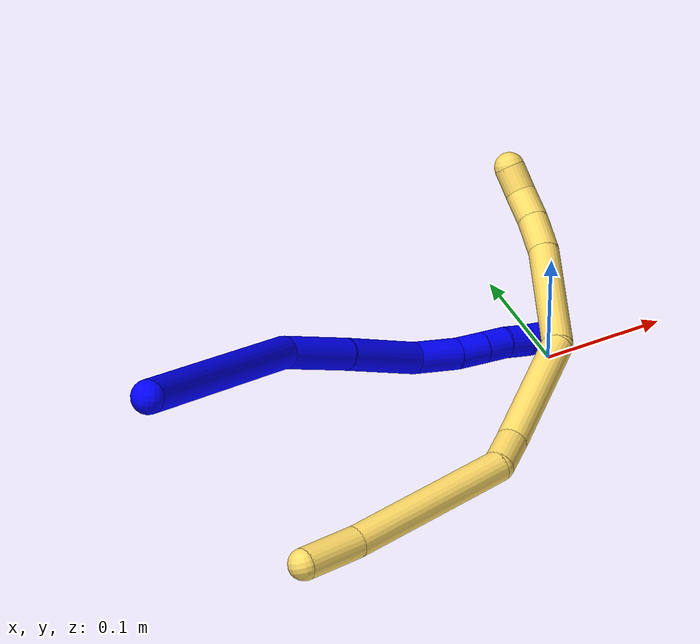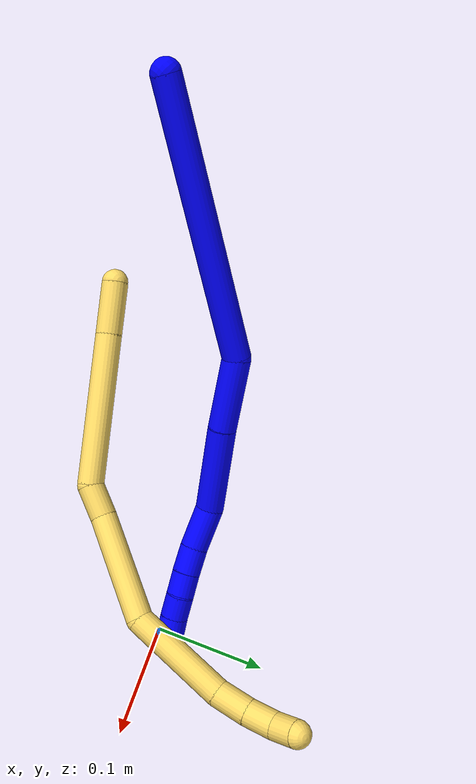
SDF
<sdf version="1.7">
 <world name="default">
  <model name="1">
   <static>0</static>
   <link name="1">
    <collision name="collision-cylinder-e_1_1_4">
     <pose>0.096894 0.03829 -0.051251 -2.49995 0.987248 -2.03507</pose>
     <geometry><cylinder><radius>0.0125</radius><length>0.232217</length></cylinder></geometry>
     <surface>
      <friction><ode><mu>1.16</mu><mu2>1.16</mu2><slip1>0</slip1><slip2>0</slip2></ode></friction>
      <contact><ode><kp>1e+06</kp><kd>1</kd><max_vel>0</max_vel><min_depth>0.001</min_depth></ode></contact>
     </surface>
    </collision>
    <visual name="visual-cylinder-e_1_1_4">
     <pose>0.096894 0.03829 -0.051251 -2.49995 0.987248 -2.03507</pose>
     <geometry><cylinder><radius>0.0125</radius><length>0.232217</length></cylinder></geometry>
     <material><ambient>0 0 1 1</ambient></material>
    </visual>
    <collision name="collision-cylinder-e_2_4_5">
     <pose>0.211817 0.086426 -0.127335 -2.7641 0.593663 -2.02508</pose>
     <geometry><cylinder><radius>0.0125</radius><length>0.064456</length></cylinder></geometry>
     <surface>
      <friction><ode><mu>1.16</mu><mu2>1.16</mu2><slip1>0</slip1><slip2>0</slip2></ode></friction>
      <contact><ode><kp>1e+06</kp><kd>1</kd><max_vel>0</max_vel><min_depth>0.001</min_depth></ode></contact>
     </surface>
    </collision>
    <visual name="visual-cylinder-e_2_4_5">
     <pose>0.211817 0.086426 -0.127335 -2.7641 0.593663 -2.02508</pose>
     <geometry><cylinder><radius>0.0125</radius><length>0.064456</length></cylinder></geometry>
     <material><ambient>0 0 1 1</ambient></material>
    </visual>
    <collision name="collision-cylinder-e_3_5_6">
     <pose>0.252804 0.109908 -0.180625 -2.69477 0.628975 -1.92217</pose>
     <geometry><cylinder><radius>0.0125</radius><length>0.078048</length></cylinder></geometry>
     <surface>
      <friction><ode><mu>1.16</mu><mu2>1.16</mu2><slip1>0</slip1><slip2>0</slip2></ode></friction>
      <contact><ode><kp>1e+06</kp><kd>1</kd><max_vel>0</max_vel><min_depth>0.001</min_depth></ode></contact>
     </surface>
    </collision>
    <visual name="visual-cylinder-e_3_5_6">
     <pose>0.252804 0.109908 -0.180625 -2.69477 0.628975 -1.92217</pose>
     <geometry><cylinder><radius>0.0125</radius><length>0.078048</length></cylinder></geometry>
     <material><ambient>0 0 1 1</ambient></material>
    </visual>
    <collision name="collision-cylinder-e_4_6_7">
     <pose>0.28385 0.125041 -0.2265 -3.05581 0.433335 -2.75647</pose>
     <geometry><cylinder><radius>0.0125</radius><length>0.038522</length></cylinder></geometry>
     <surface>
      <friction><ode><mu>1.16</mu><mu2>1.16</mu2><slip1>0</slip1><slip2>0</slip2></ode></friction>
      <contact><ode><kp>1e+06</kp><kd>1</kd><max_vel>0</max_vel><min_depth>0.001</min_depth></ode></contact>
     </surface>
    </collision>
    <visual name="visual-cylinder-e_4_6_7">
     <pose>0.28385 0.125041 -0.2265 -3.05581 0.433335 -2.75647</pose>
     <geometry><cylinder><radius>0.0125</radius><length>0.038522</length></cylinder></geometry>
     <material><ambient>0 0 1 1</ambient></material>
    </visual>
    <collision name="collision-cylinder-e_5_7_8">
     <pose>0.297772 0.126433 -0.254546 3.13168 0.501995 3.10292</pose>
     <geometry><cylinder><radius>0.0125</radius><length>0.024252</length></cylinder></geometry>
     <surface>
      <friction><ode><mu>1.16</mu><mu2>1.16</mu2><slip1>0</slip1><slip2>0</slip2></ode></friction>
      <contact><ode><kp>1e+06</kp><kd>1</kd><max_vel>0</max_vel><min_depth>0.001</min_depth></ode></contact>
     </surface>
    </collision>
    <visual name="visual-cylinder-e_5_7_8">
     <pose>0.297772 0.126433 -0.254546 3.13168 0.501995 3.10292</pose>
     <geometry><cylinder><radius>0.0125</radius><length>0.024252</length></cylinder></geometry>
     <material><ambient>0 0 1 1</ambient></material>
    </visual>
    <collision name="collision-cylinder-e_6_8_9">
     <pose>0.309044 0.126449 -0.274218 -3.12821 0.541305 -3.09336</pose>
     <geometry><cylinder><radius>0.0125</radius><length>0.021105</length></cylinder></geometry>
     <surface>
      <friction><ode><mu>1.16</mu><mu2>1.16</mu2><slip1>0</slip1><slip2>0</slip2></ode></friction>
      <contact><ode><kp>1e+06</kp><kd>1</kd><max_vel>0</max_vel><min_depth>0.001</min_depth></ode></contact>
     </surface>
    </collision>
    <visual name="visual-cylinder-e_6_8_9">
     <pose>0.309044 0.126449 -0.274218 -3.12821 0.541305 -3.09336</pose>
     <geometry><cylinder><radius>0.0125</radius><length>0.021105</length></cylinder></geometry>
     <material><ambient>0 0 1 1</ambient></material>
    </visual>
    <collision name="collision-cylinder-e_7_9_10">
     <pose>0.319929 0.12815 -0.292184 -2.96634 0.541311 -2.52832</pose>
     <geometry><cylinder><radius>0.0125</radius><length>0.021145</length></cylinder></geometry>
     <surface>
      <friction><ode><mu>1.16</mu><mu2>1.16</mu2><slip1>0</slip1><slip2>0</slip2></ode></friction>
      <contact><ode><kp>1e+06</kp><kd>1</kd><max_vel>0</max_vel><min_depth>0.001</min_depth></ode></contact>
     </surface>
    </collision>
    <visual name="visual-cylinder-e_7_9_10">
     <pose>0.319929 0.12815 -0.292184 -2.96634 0.541311 -2.52832</pose>
     <geometry><cylinder><radius>0.0125</radius><length>0.021145</length></cylinder></geometry>
     <material><ambient>0 0 1 1</ambient></material>
    </visual>
    <collision name="collision-cylinder-e_8_10_2">
     <pose>0.330995 0.130854 -0.309456 -3.00775 0.588131 -2.70599</pose>
     <geometry><cylinder><radius>0.0125</radius><length>0.020255</length></cylinder></geometry>
     <surface>
      <friction><ode><mu>1.16</mu><mu2>1.16</mu2><slip1>0</slip1><slip2>0</slip2></ode></friction>
      <contact><ode><kp>1e+06</kp><kd>1</kd><max_vel>0</max_vel><min_depth>0.001</min_depth></ode></contact>
     </surface>
    </collision>
    <visual name="visual-cylinder-e_8_10_2">
     <pose>0.330995 0.130854 -0.309456 -3.00775 0.588131 -2.70599</pose>
     <geometry><cylinder><radius>0.0125</radius><length>0.020255</length></cylinder></geometry>
     <material><ambient>0 0 1 1</ambient></material>
    </visual>
    <collision name="collision-sphere-2">
     <pose>0.336614 0.131978 -0.317806 0 -0 0</pose>
     <geometry><sphere><radius>0.0125</radius></sphere></geometry>
     <surface>
      <friction><ode><mu>1.16</mu><mu2>1.16</mu2><slip1>0</slip1><slip2>0</slip2></ode></friction>
      <contact><ode><kp>1e+06</kp><kd>1</kd><max_vel>0</max_vel><min_depth>0.001</min_depth></ode></contact>
     </surface>
    </collision>
    <visual name="visual-sphere-2">
     <pose>0.336614 0.131978 -0.317806 0 -0 0</pose>
     <geometry><sphere><radius>0.0125</radius></sphere></geometry>
     <material><ambient>0 0 1 1</ambient></material>
    </visual>
    <collision name="collision-sphere-10">
     <pose>0.325376 0.129729 -0.301106 0 -0 0</pose>
     <geometry><sphere><radius>0.0125</radius></sphere></geometry>
     <surface>
      <friction><ode><mu>1.16</mu><mu2>1.16</mu2><slip1>0</slip1><slip2>0</slip2></ode></friction>
      <contact><ode><kp>1e+06</kp><kd>1</kd><max_vel>0</max_vel><min_depth>0.001</min_depth></ode></contact>
     </surface>
    </collision>
    <visual name="visual-sphere-10">
     <pose>0.325376 0.129729 -0.301106 0 -0 0</pose>
     <geometry><sphere><radius>0.0125</radius></sphere></geometry>
     <material><ambient>0 0 1 1</ambient></material>
    </visual>
    <collision name="collision-sphere-9">
     <pose>0.314481 0.12657 -0.283262 0 -0 0</pose>
     <geometry><sphere><radius>0.0125</radius></sphere></geometry>
     <surface>
      <friction><ode><mu>1.16</mu><mu2>1.16</mu2><slip1>0</slip1><slip2>0</slip2></ode></friction>
      <contact><ode><kp>1e+06</kp><kd>1</kd><max_vel>0</max_vel><min_depth>0.001</min_depth></ode></contact>
     </surface>
    </collision>
    <visual name="visual-sphere-9">
     <pose>0.314481 0.12657 -0.283262 0 -0 0</pose>
     <geometry><sphere><radius>0.0125</radius></sphere></geometry>
     <material><ambient>0 0 1 1</ambient></material>
    </visual>
    <collision name="collision-sphere-4">
     <pose>0.193788 0.076579 -0.102502 0 -0 0</pose>
     <geometry><sphere><radius>0.0125</radius></sphere></geometry>
     <surface>
      <friction><ode><mu>1.16</mu><mu2>1.16</mu2><slip1>0</slip1><slip2>0</slip2></ode></friction>
      <contact><ode><kp>1e+06</kp><kd>1</kd><max_vel>0</max_vel><min_depth>0.001</min_depth></ode></contact>
     </surface>
    </collision>
    <visual name="visual-sphere-4">
     <pose>0.193788 0.076579 -0.102502 0 -0 0</pose>
     <geometry><sphere><radius>0.0125</radius></sphere></geometry>
     <material><ambient>0 0 1 1</ambient></material>
    </visual>
    <collision name="collision-sphere-1">
     <geometry><sphere><radius>0.0125</radius></sphere></geometry>
     <surface>
      <friction><ode><mu>1.16</mu><mu2>1.16</mu2><slip1>0</slip1><slip2>0</slip2></ode></friction>
      <contact><ode><kp>1e+06</kp><kd>1</kd><max_vel>0</max_vel><min_depth>0.001</min_depth></ode></contact>
     </surface>
    </collision>
    <visual name="visual-sphere-1">
     <geometry><sphere><radius>0.0125</radius></sphere></geometry>
     <material><ambient>0 0 1 1</ambient></material>
    </visual>
    <collision name="collision-sphere-8">
     <pose>0.303607 0.126328 -0.265175 0 -0 0</pose>
     <geometry><sphere><radius>0.0125</radius></sphere></geometry>
     <surface>
      <friction><ode><mu>1.16</mu><mu2>1.16</mu2><slip1>0</slip1><slip2>0</slip2></ode></friction>
      <contact><ode><kp>1e+06</kp><kd>1</kd><max_vel>0</max_vel><min_depth>0.001</min_depth></ode></contact>
     </surface>
    </collision>
    <visual name="visual-sphere-8">
     <pose>0.303607 0.126328 -0.265175 0 -0 0</pose>
     <geometry><sphere><radius>0.0125</radius></sphere></geometry>
     <material><ambient>0 0 1 1</ambient></material>
    </visual>
    <collision name="collision-sphere-5">
     <pose>0.229845 0.096272 -0.152168 0 -0 0</pose>
     <geometry><sphere><radius>0.0125</radius></sphere></geometry>
     <surface>
      <friction><ode><mu>1.16</mu><mu2>1.16</mu2><slip1>0</slip1><slip2>0</slip2></ode></friction>
      <contact><ode><kp>1e+06</kp><kd>1</kd><max_vel>0</max_vel><min_depth>0.001</min_depth></ode></contact>
     </surface>
    </collision>
    <visual name="visual-sphere-5">
     <pose>0.229845 0.096272 -0.152168 0 -0 0</pose>
     <geometry><sphere><radius>0.0125</radius></sphere></geometry>
     <material><ambient>0 0 1 1</ambient></material>
    </visual>
    <collision name="collision-sphere-6">
     <pose>0.275762 0.123543 -0.209083 0 -0 0</pose>
     <geometry><sphere><radius>0.0125</radius></sphere></geometry>
     <surface>
      <friction><ode><mu>1.16</mu><mu2>1.16</mu2><slip1>0</slip1><slip2>0</slip2></ode></friction>
      <contact><ode><kp>1e+06</kp><kd>1</kd><max_vel>0</max_vel><min_depth>0.001</min_depth></ode></contact>
     </surface>
    </collision>
    <visual name="visual-sphere-6">
     <pose>0.275762 0.123543 -0.209083 0 -0 0</pose>
     <geometry><sphere><radius>0.0125</radius></sphere></geometry>
     <material><ambient>0 0 1 1</ambient></material>
    </visual>
    <collision name="collision-sphere-7">
     <pose>0.291937 0.126539 -0.243916 0 -0 0</pose>
     <geometry><sphere><radius>0.0125</radius></sphere></geometry>
     <surface>
      <friction><ode><mu>1.16</mu><mu2>1.16</mu2><slip1>0</slip1><slip2>0</slip2></ode></friction>
      <contact><ode><kp>1e+06</kp><kd>1</kd><max_vel>0</max_vel><min_depth>0.001</min_depth></ode></contact>
     </surface>
    </collision>
    <visual name="visual-sphere-7">
     <pose>0.291937 0.126539 -0.243916 0 -0 0</pose>
     <geometry><sphere><radius>0.0125</radius></sphere></geometry>
     <material><ambient>0 0 1 1</ambient></material>
    </visual>
    <inertial>
     <pose>0.188063 0.077904 -0.134677 0 -0 0</pose>
     <mass>0.5</mass>
     <inertia>
      <ixx>-0.000838</ixx>
      <ixy>0</ixy>
      <ixz>0</ixz>
      <iyy>0.000336</iyy>
      <iyz>0</iyz>
      <izz>-0.001319</izz>
     </inertia>
    </inertial>
   </link>
   <pose>-0.396332 -0.143791 0.231372 -1.45106 0.158123 1.14605</pose>
  </model>
  <model name="5">
   <static>0</static>
   <link name="5">
    <collision name="collision-cylinder-e_1_1_4">
     <pose>0.021952 0.011981 -0.000549 -1.61656 1.07076 -1.11137</pose>
     <geometry><cylinder><radius>0.0125</radius><length>0.05003</length></cylinder></geometry>
     <surface>
      <friction><ode><mu>1.16</mu><mu2>1.16</mu2><slip1>0</slip1><slip2>0</slip2></ode></friction>
      <contact><ode><kp>1e+06</kp><kd>1</kd><max_vel>0</max_vel><min_depth>0.001</min_depth></ode></contact>
     </surface>
    </collision>
    <visual name="visual-cylinder-e_1_1_4">
     <pose>0.021952 0.011981 -0.000549 -1.61656 1.07076 -1.11137</pose>
     <geometry><cylinder><radius>0.0125</radius><length>0.05003</length></cylinder></geometry>
     <material><ambient>1 0.858824 0.4 1</ambient></material>
    </visual>
    <collision name="collision-cylinder-e_2_4_5">
     <pose>0.107752 0.055346 0.003817 -1.41548 1.10913 -0.974658</pose>
     <geometry><cylinder><radius>0.0125</radius><length>0.142627</length></cylinder></geometry>
     <surface>
      <friction><ode><mu>1.16</mu><mu2>1.16</mu2><slip1>0</slip1><slip2>0</slip2></ode></friction>
      <contact><ode><kp>1e+06</kp><kd>1</kd><max_vel>0</max_vel><min_depth>0.001</min_depth></ode></contact>
     </surface>
    </collision>
    <visual name="visual-cylinder-e_2_4_5">
     <pose>0.107752 0.055346 0.003817 -1.41548 1.10913 -0.974658</pose>
     <geometry><cylinder><radius>0.0125</radius><length>0.142627</length></cylinder></geometry>
     <material><ambient>1 0.858824 0.4 1</ambient></material>
    </visual>
    <collision name="collision-cylinder-e_3_5_6">
     <pose>0.180874 0.098688 0.013797 -1.1701 0.620101 -0.418244</pose>
     <geometry><cylinder><radius>0.0125</radius><length>0.031918</length></cylinder></geometry>
     <surface>
      <friction><ode><mu>1.16</mu><mu2>1.16</mu2><slip1>0</slip1><slip2>0</slip2></ode></friction>
      <contact><ode><kp>1e+06</kp><kd>1</kd><max_vel>0</max_vel><min_depth>0.001</min_depth></ode></contact>
     </surface>
    </collision>
    <visual name="visual-cylinder-e_3_5_6">
     <pose>0.180874 0.098688 0.013797 -1.1701 0.620101 -0.418244</pose>
     <geometry><cylinder><radius>0.0125</radius><length>0.031918</length></cylinder></geometry>
     <material><ambient>1 0.858824 0.4 1</ambient></material>
    </visual>
    <collision name="collision-cylinder-e_4_6_7">
     <pose>0.222269 0.140838 0.043832 -0.879775 0.68673 -0.333412</pose>
     <geometry><cylinder><radius>0.0125</radius><length>0.101325</length></cylinder></geometry>
     <surface>
      <friction><ode><mu>1.16</mu><mu2>1.16</mu2><slip1>0</slip1><slip2>0</slip2></ode></friction>
      <contact><ode><kp>1e+06</kp><kd>1</kd><max_vel>0</max_vel><min_depth>0.001</min_depth></ode></contact>
     </surface>
    </collision>
    <visual name="visual-cylinder-e_4_6_7">
     <pose>0.222269 0.140838 0.043832 -0.879775 0.68673 -0.333412</pose>
     <geometry><cylinder><radius>0.0125</radius><length>0.101325</length></cylinder></geometry>
     <material><ambient>1 0.858824 0.4 1</ambient></material>
    </visual>
    <collision name="collision-cylinder-e_5_7_8">
     <pose>0.264296 0.205229 0.099734 -0.835522 0.21162 -0.094218</pose>
     <geometry><cylinder><radius>0.0125</radius><length>0.094332</length></cylinder></geometry>
     <surface>
      <friction><ode><mu>1.16</mu><mu2>1.16</mu2><slip1>0</slip1><slip2>0</slip2></ode></friction>
      <contact><ode><kp>1e+06</kp><kd>1</kd><max_vel>0</max_vel><min_depth>0.001</min_depth></ode></contact>
     </surface>
    </collision>
    <visual name="visual-cylinder-e_5_7_8">
     <pose>0.264296 0.205229 0.099734 -0.835522 0.21162 -0.094218</pose>
     <geometry><cylinder><radius>0.0125</radius><length>0.094332</length></cylinder></geometry>
     <material><ambient>1 0.858824 0.4 1</ambient></material>
    </visual>
    <collision name="collision-cylinder-e_6_8_9">
     <pose>0.274765 0.249106 0.142635 -0.679933 0.036521 -0.012919</pose>
     <geometry><cylinder><radius>0.0125</radius><length>0.030802</length></cylinder></geometry>
     <surface>
      <friction><ode><mu>1.16</mu><mu2>1.16</mu2><slip1>0</slip1><slip2>0</slip2></ode></friction>
      <contact><ode><kp>1e+06</kp><kd>1</kd><max_vel>0</max_vel><min_depth>0.001</min_depth></ode></contact>
     </surface>
    </collision>
    <visual name="visual-cylinder-e_6_8_9">
     <pose>0.274765 0.249106 0.142635 -0.679933 0.036521 -0.012919</pose>
     <geometry><cylinder><radius>0.0125</radius><length>0.030802</length></cylinder></geometry>
     <material><ambient>1 0.858824 0.4 1</ambient></material>
    </visual>
    <collision name="collision-cylinder-e_7_9_10">
     <pose>0.274558 0.266532 0.165213 -0.63086 -0.058513 0.019099</pose>
     <geometry><cylinder><radius>0.0125</radius><length>0.026323</length></cylinder></geometry>
     <surface>
      <friction><ode><mu>1.16</mu><mu2>1.16</mu2><slip1>0</slip1><slip2>0</slip2></ode></friction>
      <contact><ode><kp>1e+06</kp><kd>1</kd><max_vel>0</max_vel><min_depth>0.001</min_depth></ode></contact>
     </surface>
    </collision>
    <visual name="visual-cylinder-e_7_9_10">
     <pose>0.274558 0.266532 0.165213 -0.63086 -0.058513 0.019099</pose>
     <geometry><cylinder><radius>0.0125</radius><length>0.026323</length></cylinder></geometry>
     <material><ambient>1 0.858824 0.4 1</ambient></material>
    </visual>
    <collision name="collision-cylinder-e_8_10_2">
     <pose>0.272405 0.276863 0.186759 -0.231783 -0.122533 0.014282</pose>
     <geometry><cylinder><radius>0.0125</radius><length>0.022644</length></cylinder></geometry>
     <surface>
      <friction><ode><mu>1.16</mu><mu2>1.16</mu2><slip1>0</slip1><slip2>0</slip2></ode></friction>
      <contact><ode><kp>1e+06</kp><kd>1</kd><max_vel>0</max_vel><min_depth>0.001</min_depth></ode></contact>
     </surface>
    </collision>
    <visual name="visual-cylinder-e_8_10_2">
     <pose>0.272405 0.276863 0.186759 -0.231783 -0.122533 0.014282</pose>
     <geometry><cylinder><radius>0.0125</radius><length>0.022644</length></cylinder></geometry>
     <material><ambient>1 0.858824 0.4 1</ambient></material>
    </visual>
    <collision name="collision-sphere-2">
     <pose>0.271021 0.279445 0.197696 0 -0 0</pose>
     <geometry><sphere><radius>0.0125</radius></sphere></geometry>
     <surface>
      <friction><ode><mu>1.16</mu><mu2>1.16</mu2><slip1>0</slip1><slip2>0</slip2></ode></friction>
      <contact><ode><kp>1e+06</kp><kd>1</kd><max_vel>0</max_vel><min_depth>0.001</min_depth></ode></contact>
     </surface>
    </collision>
    <visual name="visual-sphere-2">
     <pose>0.271021 0.279445 0.197696 0 -0 0</pose>
     <geometry><sphere><radius>0.0125</radius></sphere></geometry>
     <material><ambient>1 0.858824 0.4 1</ambient></material>
    </visual>
    <collision name="collision-sphere-10">
     <pose>0.273788 0.274282 0.175823 0 -0 0</pose>
     <geometry><sphere><radius>0.0125</radius></sphere></geometry>
     <surface>
      <friction><ode><mu>1.16</mu><mu2>1.16</mu2><slip1>0</slip1><slip2>0</slip2></ode></friction>
      <contact><ode><kp>1e+06</kp><kd>1</kd><max_vel>0</max_vel><min_depth>0.001</min_depth></ode></contact>
     </surface>
    </collision>
    <visual name="visual-sphere-10">
     <pose>0.273788 0.274282 0.175823 0 -0 0</pose>
     <geometry><sphere><radius>0.0125</radius></sphere></geometry>
     <material><ambient>1 0.858824 0.4 1</ambient></material>
    </visual>
    <collision name="collision-sphere-9">
     <pose>0.275328 0.258783 0.154603 0 -0 0</pose>
     <geometry><sphere><radius>0.0125</radius></sphere></geometry>
     <surface>
      <friction><ode><mu>1.16</mu><mu2>1.16</mu2><slip1>0</slip1><slip2>0</slip2></ode></friction>
      <contact><ode><kp>1e+06</kp><kd>1</kd><max_vel>0</max_vel><min_depth>0.001</min_depth></ode></contact>
     </surface>
    </collision>
    <visual name="visual-sphere-9">
     <pose>0.275328 0.258783 0.154603 0 -0 0</pose>
     <geometry><sphere><radius>0.0125</radius></sphere></geometry>
     <material><ambient>1 0.858824 0.4 1</ambient></material>
    </visual>
    <collision name="collision-sphere-4">
     <pose>0.043905 0.023962 -0.001097 0 -0 0</pose>
     <geometry><sphere><radius>0.0125</radius></sphere></geometry>
     <surface>
      <friction><ode><mu>1.16</mu><mu2>1.16</mu2><slip1>0</slip1><slip2>0</slip2></ode></friction>
      <contact><ode><kp>1e+06</kp><kd>1</kd><max_vel>0</max_vel><min_depth>0.001</min_depth></ode></contact>
     </surface>
    </collision>
    <visual name="visual-sphere-4">
     <pose>0.043905 0.023962 -0.001097 0 -0 0</pose>
     <geometry><sphere><radius>0.0125</radius></sphere></geometry>
     <material><ambient>1 0.858824 0.4 1</ambient></material>
    </visual>
    <collision name="collision-sphere-1">
     <geometry><sphere><radius>0.0125</radius></sphere></geometry>
     <surface>
      <friction><ode><mu>1.16</mu><mu2>1.16</mu2><slip1>0</slip1><slip2>0</slip2></ode></friction>
      <contact><ode><kp>1e+06</kp><kd>1</kd><max_vel>0</max_vel><min_depth>0.001</min_depth></ode></contact>
     </surface>
    </collision>
    <visual name="visual-sphere-1">
     <geometry><sphere><radius>0.0125</radius></sphere></geometry>
     <material><ambient>1 0.858824 0.4 1</ambient></material>
    </visual>
    <collision name="collision-sphere-8">
     <pose>0.274203 0.239429 0.130667 0 -0 0</pose>
     <geometry><sphere><radius>0.0125</radius></sphere></geometry>
     <surface>
      <friction><ode><mu>1.16</mu><mu2>1.16</mu2><slip1>0</slip1><slip2>0</slip2></ode></friction>
      <contact><ode><kp>1e+06</kp><kd>1</kd><max_vel>0</max_vel><min_depth>0.001</min_depth></ode></contact>
     </surface>
    </collision>
    <visual name="visual-sphere-8">
     <pose>0.274203 0.239429 0.130667 0 -0 0</pose>
     <geometry><sphere><radius>0.0125</radius></sphere></geometry>
     <material><ambient>1 0.858824 0.4 1</ambient></material>
    </visual>
    <collision name="collision-sphere-5">
     <pose>0.1716 0.086729 0.008731 0 -0 0</pose>
     <geometry><sphere><radius>0.0125</radius></sphere></geometry>
     <surface>
      <friction><ode><mu>1.16</mu><mu2>1.16</mu2><slip1>0</slip1><slip2>0</slip2></ode></friction>
      <contact><ode><kp>1e+06</kp><kd>1</kd><max_vel>0</max_vel><min_depth>0.001</min_depth></ode></contact>
     </surface>
    </collision>
    <visual name="visual-sphere-5">
     <pose>0.1716 0.086729 0.008731 0 -0 0</pose>
     <geometry><sphere><radius>0.0125</radius></sphere></geometry>
     <material><ambient>1 0.858824 0.4 1</ambient></material>
    </visual>
    <collision name="collision-sphere-6">
     <pose>0.190148 0.110647 0.018863 0 -0 0</pose>
     <geometry><sphere><radius>0.0125</radius></sphere></geometry>
     <surface>
      <friction><ode><mu>1.16</mu><mu2>1.16</mu2><slip1>0</slip1><slip2>0</slip2></ode></friction>
      <contact><ode><kp>1e+06</kp><kd>1</kd><max_vel>0</max_vel><min_depth>0.001</min_depth></ode></contact>
     </surface>
    </collision>
    <visual name="visual-sphere-6">
     <pose>0.190148 0.110647 0.018863 0 -0 0</pose>
     <geometry><sphere><radius>0.0125</radius></sphere></geometry>
     <material><ambient>1 0.858824 0.4 1</ambient></material>
    </visual>
    <collision name="collision-sphere-7">
     <pose>0.254389 0.171029 0.068802 0 -0 0</pose>
     <geometry><sphere><radius>0.0125</radius></sphere></geometry>
     <surface>
      <friction><ode><mu>1.16</mu><mu2>1.16</mu2><slip1>0</slip1><slip2>0</slip2></ode></friction>
      <contact><ode><kp>1e+06</kp><kd>1</kd><max_vel>0</max_vel><min_depth>0.001</min_depth></ode></contact>
     </surface>
    </collision>
    <visual name="visual-sphere-7">
     <pose>0.254389 0.171029 0.068802 0 -0 0</pose>
     <geometry><sphere><radius>0.0125</radius></sphere></geometry>
     <material><ambient>1 0.858824 0.4 1</ambient></material>
    </visual>
    <inertial>
     <pose>0.183103 0.132462 0.055556 0 -0 0</pose>
     <mass>0.5</mass>
     <inertia>
      <ixx>0.000107</ixx>
      <ixy>0</ixy>
      <ixz>0</ixz>
      <iyy>0.000235</iyy>
      <iyz>0</iyz>
      <izz>-0.000521</izz>
     </inertia>
    </inertial>
   </link>
   <pose>-0.286189 -0.154534 0.031043 -0.558096 -0.119975 -0.171029</pose>
  </model>
 </world>
</sdf>
